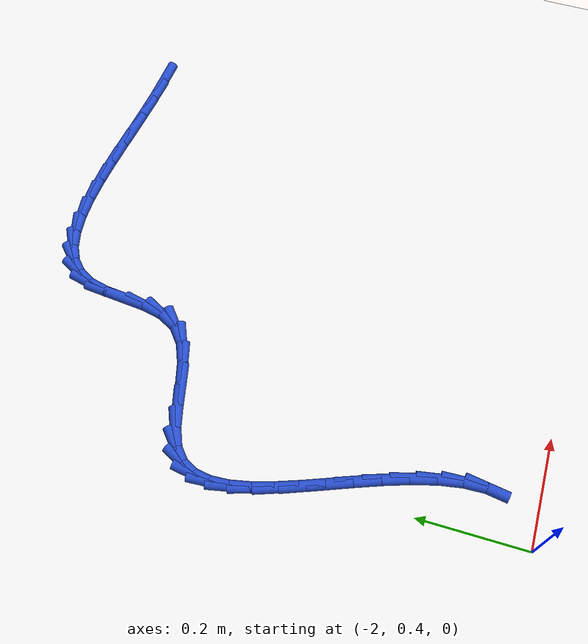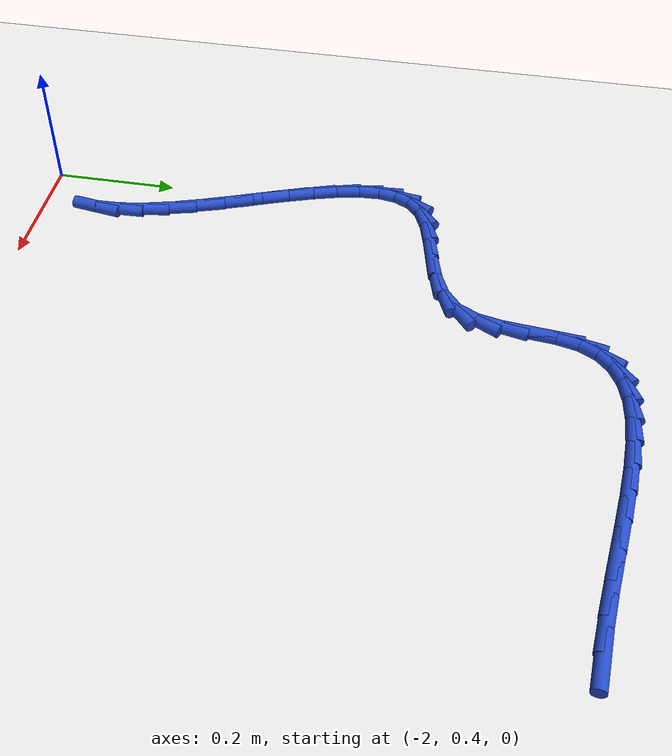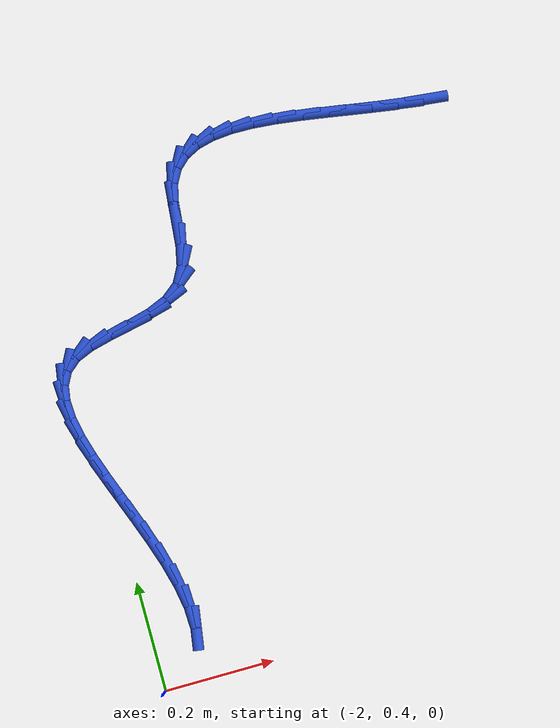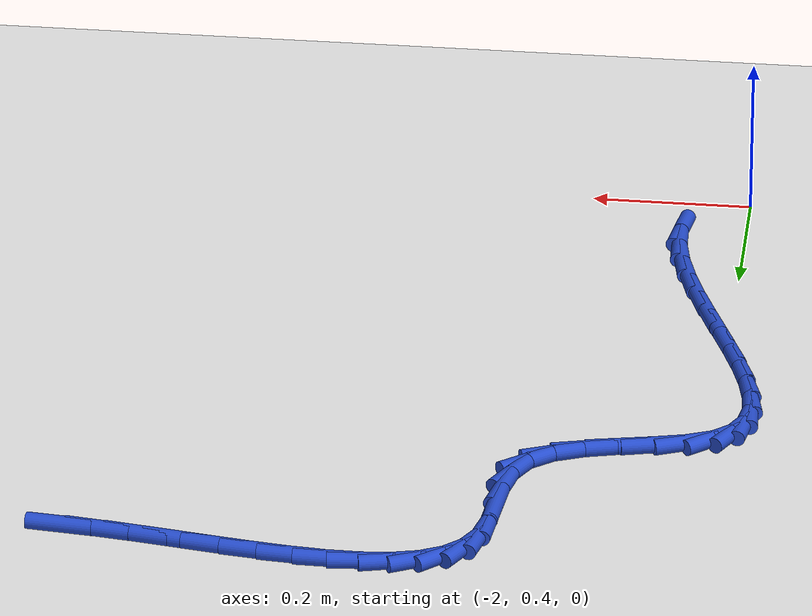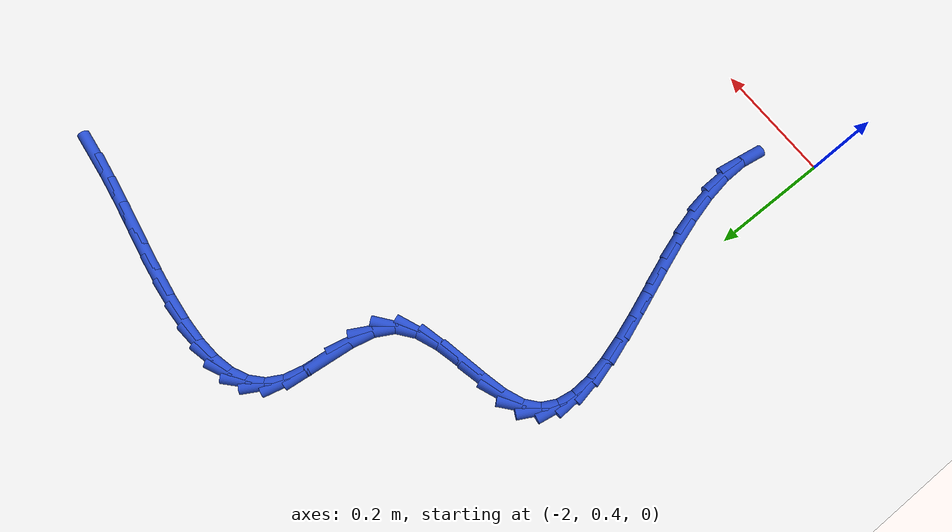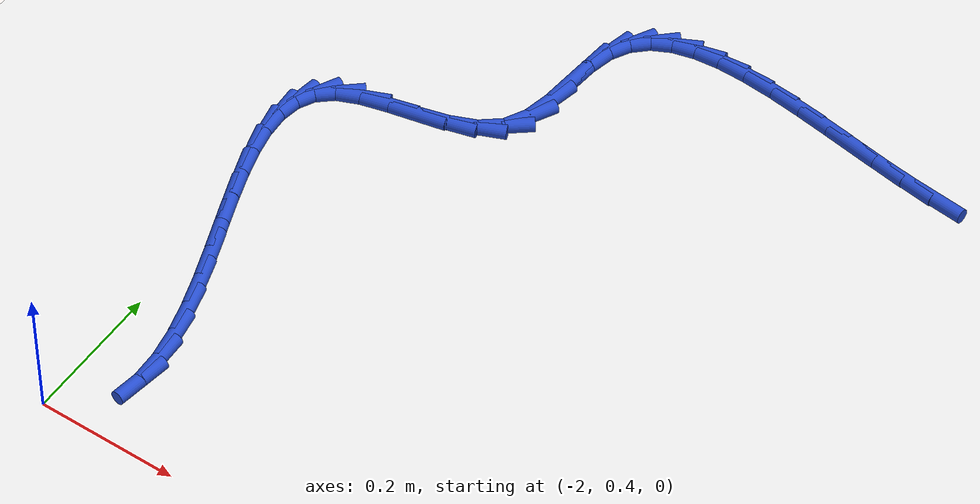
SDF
<sdf version="1.6">
 <world name="default">
  <model name="ground_plane">
   <static>1</static>
   <link name="link">
    <collision name="collision">
     <geometry><plane><normal>0 0 1</normal><size>100 100</size></plane></geometry>
     <surface><friction><ode><mu>100</mu><mu2>50</mu2></ode></friction></surface>
    </collision>
    <visual name="visual">
     <cast_shadows>0</cast_shadows>
     <geometry><plane><normal>0 0 1</normal><size>100 100</size></plane></geometry>
     <material>
      <script><uri>file://media/materials/scripts/gazebo.material</uri><name>Gazebo/WhiteGlow</name></script>
     </material>
    </visual>
   </link>
  </model>
  <model name="line">
   <link name="link_55">
    <pose>-1.253890275954914 1.310470600475133 0.01 0 1.57 -0.1020195654637777</pose>
    <collision name="collision">
     <geometry><cylinder><radius>0.01</radius><length>0.08</length></cylinder></geometry>
    </collision>
    <visual name="visual">
     <material>
      <script><name>Gazebo/Blue</name><uri>file://media/materials/scripts/gazebo.material</uri></script>
     </material>
     <geometry><cylinder><radius>0.01</radius><length>0.08</length></cylinder></geometry>
    </visual>
   </link>
   <link name="link_56">
    <pose>-1.299575607714188 1.3151476356203005 0.01 0 1.57 -0.13773700441533812</pose>
    <collision name="collision">
     <geometry><cylinder><radius>0.01</radius><length>0.08</length></cylinder></geometry>
    </collision>
    <visual name="visual">
     <material>
      <script><name>Gazebo/Blue</name><uri>file://media/materials/scripts/gazebo.material</uri></script>
     </material>
     <geometry><cylinder><radius>0.01</radius><length>0.08</length></cylinder></geometry>
    </visual>
   </link>
   <link name="link_57">
    <pose>-1.346498514329996 1.3216518397968404 0.01 0 1.57 -0.15720759408814997</pose>
    <collision name="collision">
     <geometry><cylinder><radius>0.01</radius><length>0.08</length></cylinder></geometry>
    </collision>
    <visual name="visual">
     <material>
      <script><name>Gazebo/Blue</name><uri>file://media/materials/scripts/gazebo.material</uri></script>
     </material>
     <geometry><cylinder><radius>0.01</radius><length>0.08</length></cylinder></geometry>
    </visual>
   </link>
   <link name="link_58">
    <pose>-1.3939632399597408 1.3291757399416597 0.01 0 1.57 -0.1620826792132219</pose>
    <collision name="collision">
     <geometry><cylinder><radius>0.01</radius><length>0.08</length></cylinder></geometry>
    </collision>
    <visual name="visual">
     <material>
      <script><name>Gazebo/Blue</name><uri>file://media/materials/scripts/gazebo.material</uri></script>
     </material>
     <geometry><cylinder><radius>0.01</radius><length>0.08</length></cylinder></geometry>
    </visual>
   </link>
   <link name="link_59">
    <pose>-1.4412740287608288 1.3369118629916665 0.01 0 1.57 -0.1525023961799148</pose>
    <collision name="collision">
     <geometry><cylinder><radius>0.01</radius><length>0.08</length></cylinder></geometry>
    </collision>
    <visual name="visual">
     <material>
      <script><name>Gazebo/Blue</name><uri>file://media/materials/scripts/gazebo.material</uri></script>
     </material>
     <geometry><cylinder><radius>0.01</radius><length>0.08</length></cylinder></geometry>
    </visual>
   </link>
   <link name="link_60">
    <pose>-1.4877351248906625 1.3440527358837666 0.01 0 1.57 -0.12706561280483658</pose>
    <collision name="collision">
     <geometry><cylinder><radius>0.01</radius><length>0.08</length></cylinder></geometry>
    </collision>
    <visual name="visual">
     <material>
      <script><name>Gazebo/Blue</name><uri>file://media/materials/scripts/gazebo.material</uri></script>
     </material>
     <geometry><cylinder><radius>0.01</radius><length>0.08</length></cylinder></geometry>
    </visual>
   </link>
   <link name="link_61">
    <pose>-1.5326507725066474 1.3497908855548688 0.01 0 1.57 -0.08248376761253384</pose>
    <collision name="collision">
     <geometry><cylinder><radius>0.01</radius><length>0.08</length></cylinder></geometry>
    </collision>
    <visual name="visual">
     <material>
      <script><name>Gazebo/Blue</name><uri>file://media/materials/scripts/gazebo.material</uri></script>
     </material>
     <geometry><cylinder><radius>0.01</radius><length>0.08</length></cylinder></geometry>
    </visual>
   </link>
   <link name="link_62">
    <pose>-1.5753252157661868 1.3533188389418793 0.01 0 1.57 -0.012840672194655829</pose>
    <collision name="collision">
     <geometry><cylinder><radius>0.01</radius><length>0.08</length></cylinder></geometry>
    </collision>
    <visual name="visual">
     <material>
      <script><name>Gazebo/Blue</name><uri>file://media/materials/scripts/gazebo.material</uri></script>
     </material>
     <geometry><cylinder><radius>0.01</radius><length>0.08</length></cylinder></geometry>
    </visual>
   </link>
   <link name="link_63">
    <pose>-1.615062698826686 1.3538291229817059 0.01 0 1.57 0.09155552827843134</pose>
    <collision name="collision">
     <geometry><cylinder><radius>0.01</radius><length>0.08</length></cylinder></geometry>
    </collision>
    <visual name="visual">
     <material>
      <script><name>Gazebo/Blue</name><uri>file://media/materials/scripts/gazebo.material</uri></script>
     </material>
     <geometry><cylinder><radius>0.01</radius><length>0.08</length></cylinder></geometry>
    </visual>
   </link>
   <link name="link_64">
    <pose>-1.6511674658455484 1.3505142646112551 0.01 0 1.57 0.24507936637229677</pose>
    <collision name="collision">
     <geometry><cylinder><radius>0.01</radius><length>0.08</length></cylinder></geometry>
    </collision>
    <visual name="visual">
     <material>
      <script><name>Gazebo/Blue</name><uri>file://media/materials/scripts/gazebo.material</uri></script>
     </material>
     <geometry><cylinder><radius>0.01</radius><length>0.08</length></cylinder></geometry>
    </visual>
   </link>
   <link name="link_65">
    <pose>-1.6829437609801796 1.3425667907674357 0.01 0 1.57 0.46399230576907846</pose>
    <collision name="collision">
     <geometry><cylinder><radius>0.01</radius><length>0.08</length></cylinder></geometry>
    </collision>
    <visual name="visual">
     <material>
      <script><name>Gazebo/Blue</name><uri>file://media/materials/scripts/gazebo.material</uri></script>
     </material>
     <geometry><cylinder><radius>0.01</radius><length>0.08</length></cylinder></geometry>
    </visual>
   </link>
   <link name="link_66">
    <pose>-1.709695828387983 1.3291792283871535 0.01 0 1.57 0.7510606503273874</pose>
    <collision name="collision">
     <geometry><cylinder><radius>0.01</radius><length>0.08</length></cylinder></geometry>
    </collision>
    <visual name="visual">
     <material>
      <script><name>Gazebo/Blue</name><uri>file://media/materials/scripts/gazebo.material</uri></script>
     </material>
     <geometry><cylinder><radius>0.01</radius><length>0.08</length></cylinder></geometry>
    </visual>
   </link>
   <link name="link_67">
    <pose>-1.7307279122263628 1.3095441044073166 0.01 0 1.57 1.0697741440407686</pose>
    <collision name="collision">
     <geometry><cylinder><radius>0.01</radius><length>0.08</length></cylinder></geometry>
    </collision>
    <visual name="visual">
     <material>
      <script><name>Gazebo/Blue</name><uri>file://media/materials/scripts/gazebo.material</uri></script>
     </material>
     <geometry><cylinder><radius>0.01</radius><length>0.08</length></cylinder></geometry>
    </visual>
   </link>
   <link name="link_68">
    <pose>-1.7453442566527242 1.2828539457648316 0.01 0 1.57 1.345590347891937</pose>
    <collision name="collision">
     <geometry><cylinder><radius>0.01</radius><length>0.08</length></cylinder></geometry>
    </collision>
    <visual name="visual">
     <material>
      <script><name>Gazebo/Blue</name><uri>file://media/materials/scripts/gazebo.material</uri></script>
     </material>
     <geometry><cylinder><radius>0.01</radius><length>0.08</length></cylinder></geometry>
    </visual>
   </link>
   <link name="link_69">
    <pose>-1.7531857191021087 1.248625525137174 0.01 0 1.57 1.4769746714853549</pose>
    <collision name="collision">
     <geometry><cylinder><radius>0.01</radius><length>0.08</length></cylinder></geometry>
    </collision>
    <visual name="visual">
     <material>
      <script><name>Gazebo/Blue</name><uri>file://media/materials/scripts/gazebo.material</uri></script>
     </material>
     <geometry><cylinder><radius>0.01</radius><length>0.08</length></cylinder></geometry>
    </visual>
   </link>
   <link name="link_70">
    <pose>-1.7568897357363 1.2092620963746297 0.01 0 1.57 1.4780227258974552</pose>
    <collision name="collision">
     <geometry><cylinder><radius>0.01</radius><length>0.08</length></cylinder></geometry>
    </collision>
    <visual name="visual">
     <material>
      <script><name>Gazebo/Blue</name><uri>file://media/materials/scripts/gazebo.material</uri></script>
     </material>
     <geometry><cylinder><radius>0.01</radius><length>0.08</length></cylinder></geometry>
    </visual>
   </link>
   <link name="link_71">
    <pose>-1.760665441256584 1.1686808659572385 0.01 0 1.57 1.3608209402405416</pose>
    <collision name="collision">
     <geometry><cylinder><radius>0.01</radius><length>0.08</length></cylinder></geometry>
    </collision>
    <visual name="visual">
     <material>
      <script><name>Gazebo/Blue</name><uri>file://media/materials/scripts/gazebo.material</uri></script>
     </material>
     <geometry><cylinder><radius>0.01</radius><length>0.08</length></cylinder></geometry>
    </visual>
   </link>
   <link name="link_72">
    <pose>-1.7687358434473825 1.130812403736046 0.01 0 1.57 1.0825146848429377</pose>
    <collision name="collision">
     <geometry><cylinder><radius>0.01</radius><length>0.08</length></cylinder></geometry>
    </collision>
    <visual name="visual">
     <material>
      <script><name>Gazebo/Blue</name><uri>file://media/materials/scripts/gazebo.material</uri></script>
     </material>
     <geometry><cylinder><radius>0.01</radius><length>0.08</length></cylinder></geometry>
    </visual>
   </link>
   <link name="link_73">
    <pose>-1.7853226657203982 1.0995862077415397 0.01 0 1.57 0.6760642856665121</pose>
    <collision name="collision">
     <geometry><cylinder><radius>0.01</radius><length>0.08</length></cylinder></geometry>
    </collision>
    <visual name="visual">
     <material>
      <script><name>Gazebo/Blue</name><uri>file://media/materials/scripts/gazebo.material</uri></script>
     </material>
     <geometry><cylinder><radius>0.01</radius><length>0.08</length></cylinder></geometry>
    </visual>
   </link>
   <link name="link_74">
    <pose>-1.8128945404063046 1.0774688057631645 0.01 0 1.57 0.3944374071200519</pose>
    <collision name="collision">
     <geometry><cylinder><radius>0.01</radius><length>0.08</length></cylinder></geometry>
    </collision>
    <visual name="visual">
     <material>
      <script><name>Gazebo/Blue</name><uri>file://media/materials/scripts/gazebo.material</uri></script>
     </material>
     <geometry><cylinder><radius>0.01</radius><length>0.08</length></cylinder></geometry>
    </visual>
   </link>
   <link name="link_75">
    <pose>-1.8486953790097813 1.0625666491694188 0.01 0 1.57 0.25227227049008477</pose>
    <collision name="collision">
     <geometry><cylinder><radius>0.01</radius><length>0.08</length></cylinder></geometry>
    </collision>
    <visual name="visual">
     <material>
      <script><name>Gazebo/Blue</name><uri>file://media/materials/scripts/gazebo.material</uri></script>
     </material>
     <geometry><cylinder><radius>0.01</radius><length>0.08</length></cylinder></geometry>
    </visual>
   </link>
   <link name="link_76">
    <pose>-1.8890000973654983 1.0521775537454803 0.01 0 1.57 0.20584215326226246</pose>
    <collision name="collision">
     <geometry><cylinder><radius>0.01</radius><length>0.08</length></cylinder></geometry>
    </collision>
    <visual name="visual">
     <material>
      <script><name>Gazebo/Blue</name><uri>file://media/materials/scripts/gazebo.material</uri></script>
     </material>
     <geometry><cylinder><radius>0.01</radius><length>0.08</length></cylinder></geometry>
    </visual>
   </link>
   <link name="link_77">
    <pose>-1.9300836113081277 1.043599335276528 0.01 0 1.57 0.2433793251217469</pose>
    <collision name="collision">
     <geometry><cylinder><radius>0.01</radius><length>0.08</length></cylinder></geometry>
    </collision>
    <visual name="visual">
     <material>
      <script><name>Gazebo/Blue</name><uri>file://media/materials/scripts/gazebo.material</uri></script>
     </material>
     <geometry><cylinder><radius>0.01</radius><length>0.08</length></cylinder></geometry>
    </visual>
   </link>
   <link name="link_78">
    <pose>-1.9682208366723393 1.0341298095477407 0.01 0 1.57 0.39349726225751896</pose>
    <collision name="collision">
     <geometry><cylinder><radius>0.01</radius><length>0.08</length></cylinder></geometry>
    </collision>
    <visual name="visual">
     <material>
      <script><name>Gazebo/Blue</name><uri>file://media/materials/scripts/gazebo.material</uri></script>
     </material>
     <geometry><cylinder><radius>0.01</radius><length>0.08</length></cylinder></geometry>
    </visual>
   </link>
   <link name="link_79">
    <pose>-1.9996866892928034 1.0210667923442962 0.01 0 1.57 0.7098550646958778</pose>
    <collision name="collision">
     <geometry><cylinder><radius>0.01</radius><length>0.08</length></cylinder></geometry>
    </collision>
    <visual name="visual">
     <material>
      <script><name>Gazebo/Blue</name><uri>file://media/materials/scripts/gazebo.material</uri></script>
     </material>
     <geometry><cylinder><radius>0.01</radius><length>0.08</length></cylinder></geometry>
    </visual>
   </link>
   <link name="link_80">
    <pose>-2.0215696274960733 1.002263293755309 0.01 0 1.57 1.0916848690059862</pose>
    <collision name="collision">
     <geometry><cylinder><radius>0.01</radius><length>0.08</length></cylinder></geometry>
    </collision>
    <visual name="visual">
     <material>
      <script><name>Gazebo/Blue</name><uri>file://media/materials/scripts/gazebo.material</uri></script>
     </material>
     <geometry><cylinder><radius>0.01</radius><length>0.08</length></cylinder></geometry>
    </visual>
   </link>
   <link name="link_81">
    <pose>-2.03426334763684 0.9778279519958778 0.01 0 1.57 1.4109551436245664</pose>
    <collision name="collision">
     <geometry><cylinder><radius>0.01</radius><length>0.08</length></cylinder></geometry>
    </collision>
    <visual name="visual">
     <material>
      <script><name>Gazebo/Blue</name><uri>file://media/materials/scripts/gazebo.material</uri></script>
     </material>
     <geometry><cylinder><radius>0.01</radius><length>0.08</length></cylinder></geometry>
    </visual>
   </link>
   <link name="link_82">
    <pose>-2.039000822308452 0.9484421613347578 0.01 0 1.57 -1.5118598404167116</pose>
    <collision name="collision">
     <geometry><cylinder><radius>0.01</radius><length>0.08</length></cylinder></geometry>
    </collision>
    <visual name="visual">
     <material>
      <script><name>Gazebo/Blue</name><uri>file://media/materials/scripts/gazebo.material</uri></script>
     </material>
     <geometry><cylinder><radius>0.01</radius><length>0.08</length></cylinder></geometry>
    </visual>
   </link>
   <link name="link_83">
    <pose>-2.0370150242198037 0.9147873161195541 0.01 0 1.57 -1.372688359311999</pose>
    <collision name="collision">
     <geometry><cylinder><radius>0.01</radius><length>0.08</length></cylinder></geometry>
    </collision>
    <visual name="visual">
     <material>
      <script><name>Gazebo/Blue</name><uri>file://media/materials/scripts/gazebo.material</uri></script>
     </material>
     <geometry><cylinder><radius>0.01</radius><length>0.08</length></cylinder></geometry>
    </visual>
   </link>
   <link name="link_84">
    <pose>-2.029538926079788 0.8775448106978747 0.01 0 1.57 -1.286465916396354</pose>
    <collision name="collision">
     <geometry><cylinder><radius>0.01</radius><length>0.08</length></cylinder></geometry>
    </collision>
    <visual name="visual">
     <material>
      <script><name>Gazebo/Blue</name><uri>file://media/materials/scripts/gazebo.material</uri></script>
     </material>
     <geometry><cylinder><radius>0.01</radius><length>0.08</length></cylinder></geometry>
    </visual>
   </link>
   <link name="link_85">
    <pose>-2.017805500597299 0.8373960394173244 0.01 0 1.57 -1.2356569837477727</pose>
    <collision name="collision">
     <geometry><cylinder><radius>0.01</radius><length>0.08</length></cylinder></geometry>
    </collision>
    <visual name="visual">
     <material>
      <script><name>Gazebo/Blue</name><uri>file://media/materials/scripts/gazebo.material</uri></script>
     </material>
     <geometry><cylinder><radius>0.01</radius><length>0.08</length></cylinder></geometry>
    </visual>
   </link>
   <link name="link_86">
    <pose>-2.0030477204812276 0.7950223966255106 0.01 0 1.57 -1.2104247567437196</pose>
    <collision name="collision">
     <geometry><cylinder><radius>0.01</radius><length>0.08</length></cylinder></geometry>
    </collision>
    <visual name="visual">
     <material>
      <script><name>Gazebo/Blue</name><uri>file://media/materials/scripts/gazebo.material</uri></script>
     </material>
     <geometry><cylinder><radius>0.01</radius><length>0.08</length></cylinder></geometry>
    </visual>
   </link>
   <link name="link_87">
    <pose>-1.9864985584404689 0.7511052766700389 0.01 0 1.57 -1.2058655031998164</pose>
    <collision name="collision">
     <geometry><cylinder><radius>0.01</radius><length>0.08</length></cylinder></geometry>
    </collision>
    <visual name="visual">
     <material>
      <script><name>Gazebo/Blue</name><uri>file://media/materials/scripts/gazebo.material</uri></script>
     </material>
     <geometry><cylinder><radius>0.01</radius><length>0.08</length></cylinder></geometry>
    </visual>
   </link>
   <link name="link_88">
    <pose>-1.969390987183915 0.7063260738985155 0.01 0 1.57 -1.2203770370985165</pose>
    <collision name="collision">
     <geometry><cylinder><radius>0.01</radius><length>0.08</length></cylinder></geometry>
    </collision>
    <visual name="visual">
     <material>
      <script><name>Gazebo/Blue</name><uri>file://media/materials/scripts/gazebo.material</uri></script>
     </material>
     <geometry><cylinder><radius>0.01</radius><length>0.08</length></cylinder></geometry>
    </visual>
   </link>
   <link name="link_89">
    <pose>-1.9529579794204608 0.6613661826585479 0.01 0 1.57 -1.2550142789807062</pose>
    <collision name="collision">
     <geometry><cylinder><radius>0.01</radius><length>0.08</length></cylinder></geometry>
    </collision>
    <visual name="visual">
     <material>
      <script><name>Gazebo/Blue</name><uri>file://media/materials/scripts/gazebo.material</uri></script>
     </material>
     <geometry><cylinder><radius>0.01</radius><length>0.08</length></cylinder></geometry>
    </visual>
   </link>
   <link name="link_90">
    <pose>-1.938432507858997 0.6169069972977405 0.01 0 1.57 -1.3135535219286867</pose>
    <collision name="collision">
     <geometry><cylinder><radius>0.01</radius><length>0.08</length></cylinder></geometry>
    </collision>
    <visual name="visual">
     <material>
      <script><name>Gazebo/Blue</name><uri>file://media/materials/scripts/gazebo.material</uri></script>
     </material>
     <geometry><cylinder><radius>0.01</radius><length>0.08</length></cylinder></geometry>
    </visual>
   </link>
   <link name="link_91">
    <pose>-1.9270475452084188 0.5736299121637014 0.01 0 1.57 -1.4030828271515945</pose>
    <collision name="collision">
     <geometry><cylinder><radius>0.01</radius><length>0.08</length></cylinder></geometry>
    </collision>
    <visual name="visual">
     <material>
      <script><name>Gazebo/Blue</name><uri>file://media/materials/scripts/gazebo.material</uri></script>
     </material>
     <geometry><cylinder><radius>0.01</radius><length>0.08</length></cylinder></geometry>
    </visual>
   </link>
   <link name="link_92">
    <pose>-1.9200360641776182 0.5322163216040354 0.01 0 1.57 -1.5346640365693718</pose>
    <collision name="collision">
     <geometry><cylinder><radius>0.01</radius><length>0.08</length></cylinder></geometry>
    </collision>
    <visual name="visual">
     <material>
      <script><name>Gazebo/Blue</name><uri>file://media/materials/scripts/gazebo.material</uri></script>
     </material>
     <geometry><cylinder><radius>0.01</radius><length>0.08</length></cylinder></geometry>
    </visual>
   </link>
   <link name="link_93">
    <pose>-1.9186310374754891 0.49334761996635035 0.01 0 1.57 1.4194916007809126</pose>
    <collision name="collision">
     <geometry><cylinder><radius>0.01</radius><length>0.08</length></cylinder></geometry>
    </collision>
    <visual name="visual">
     <material>
      <script><name>Gazebo/Blue</name><uri>file://media/materials/scripts/gazebo.material</uri></script>
     </material>
     <geometry><cylinder><radius>0.01</radius><length>0.08</length></cylinder></geometry>
    </visual>
   </link>
  </model>
 </world>
</sdf>
